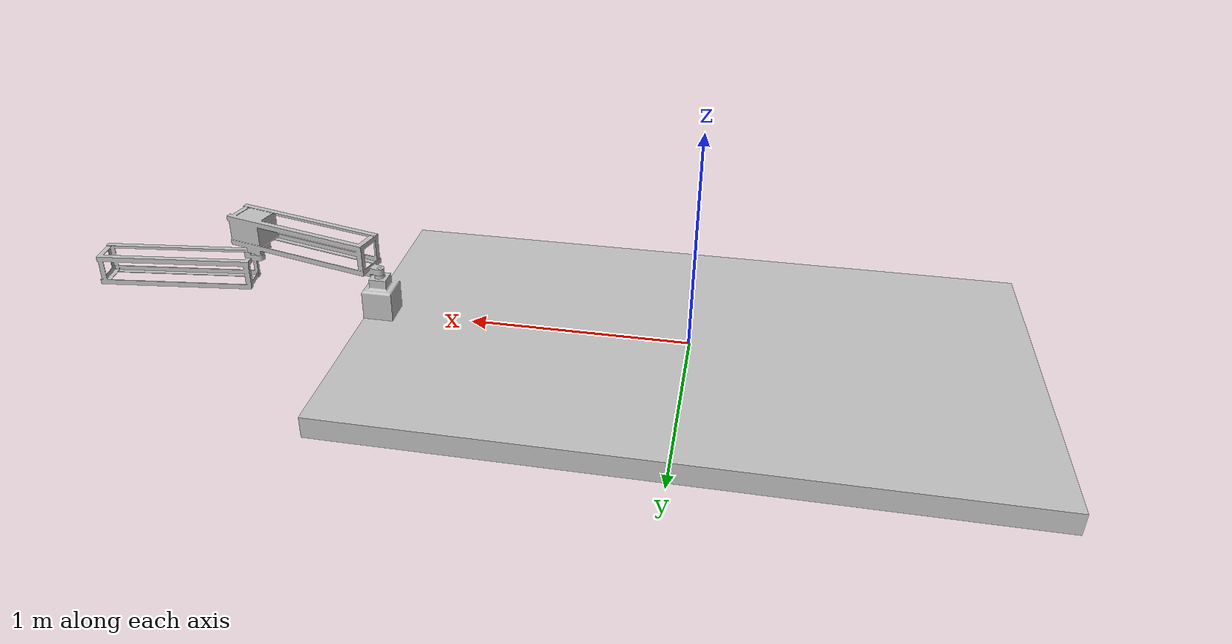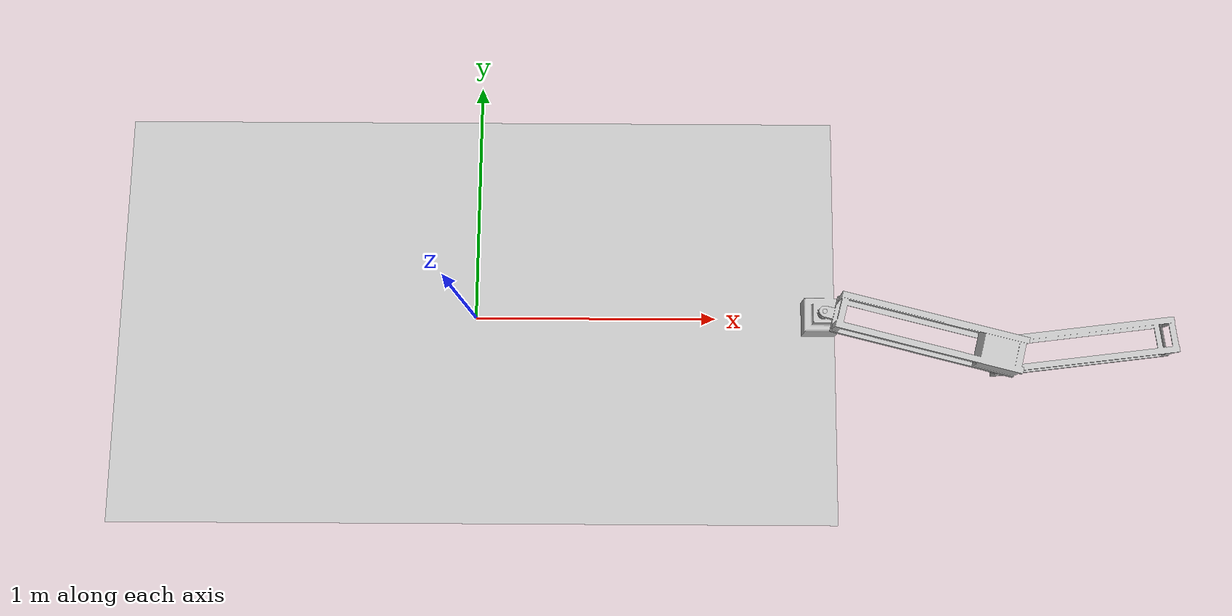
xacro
<?xml version="1.0"?>
<robot xmlns:xacro="http://www.ros.org/wiki/xacro" name="arm">
    <xacro:arg name="initial_positions_file" default="initial_positions.yaml" />

    <!-- Import arm urdf file -->
    <xacro:include filename="$(find arm)/urdf/arm.xacro" />

    <!-- Import control_xacro -->
    <xacro:include filename="arm.ros2_control.xacro" />

    <xacro:arm_ros2_control name="FakeSystem" initial_positions_file="$(arg initial_positions_file)"/>

</robot>

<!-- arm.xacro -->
<!-- XACRO version of the URDF generated by SolidWorks to URDF Exporter -->
<robot xmlns:xacro="http://ros.org/wiki/xacro" name="arm">

  <!-- Define properties for reuse -->
  <xacro:property name="color" value="0.75294 0.75294 0.75294 1"/>
  <xacro:property name="effort_limit" value="5"/>
  <xacro:property name="velocity_limit" value="1"/>
  <xacro:property name="joint_limit_lower" value="-1.5"/>
  <xacro:property name="joint_limit_upper" value="1.5"/>

  <!-- Base Link -->
  <link name="base_link">
    <inertial>
      <origin xyz="0.0048255 -1.4572E-16 -0.049574" rpy="0 0 0"/>
      <mass value="511.73"/>
      <inertia ixx="123.26" ixy="1.177E-14" ixz="-6.9518E-16"
               iyy="382.93" iyz="-8.3518E-16" izz="505.33"/>
    </inertial>
    <visual>
      <origin xyz="0 0 0" rpy="0 0 0"/>
      <geometry>
        <mesh filename="package://arm/meshes/base_link.STL"/>
      </geometry>
      <material name="base_color">
        <color rgba="${color}"/>
      </material>
    </visual>
    <collision>
      <origin xyz="0 0 0" rpy="0 0 0"/>
      <geometry>
        <mesh filename="package://arm/meshes/base_link.STL"/>
      </geometry>
    </collision>
  </link>

  <!-- Link1 -->
  <link name="link1">
    <inertial>
      <origin xyz="0.46735 -0.11695 0.053163" rpy="0 0 0"/>
      <mass value="6.3909"/>
      <inertia ixx="0.018479" ixy="0.036498" ixz="1.5041E-05"
               iyy="0.15519" iyz="-3.764E-06" izz="0.16167"/>
    </inertial>
    <visual>
      <origin xyz="0 0 0" rpy="0 0 0"/>
      <geometry>
        <mesh filename="package://arm/meshes/link1.STL"/>
      </geometry>
      <material name="link1_color">
        <color rgba="${color}"/>
      </material>
    </visual>
    <collision>
      <origin xyz="0 0 0" rpy="0 0 0"/>
      <geometry>
        <mesh filename="package://arm/meshes/link1.STL"/>
      </geometry>
    </collision>
  </link>

  <!-- Joint1 -->
  <joint name="joint1" type="revolute">
    <origin xyz="1.43 0 0.236" rpy="0 0 0"/>
    <parent link="base_link"/>
    <child link="link1"/>
    <axis xyz="0 0 1"/>
    <limit lower="${joint_limit_lower}" upper="${joint_limit_upper}"
           effort="${effort_limit}" velocity="${velocity_limit}"/>
  </joint>

  <!-- Link2 -->
  <link name="link2">
    <inertial>
      <origin xyz="-2.0486 -0.1649 0.16936" rpy="0 0 0"/>
      <mass value="522.78"/>
      <inertia ixx="124.33" ixy="-2.7911" ixz="5.6764"
               iyy="438.92" iyz="0.31315" izz="560.68"/>
    </inertial>
    <visual>
      <origin xyz="0 0 0" rpy="0 0 0"/>
      <geometry>
        <mesh filename="package://arm/meshes/link2.STL"/>
      </geometry>
      <material name="link2_color">
        <color rgba="${color}"/>
      </material>
    </visual>
    <collision>
      <origin xyz="0 0 0" rpy="0 0 0"/>
      <geometry>
        <mesh filename="package://arm/meshes/link2.STL"/>
      </geometry>
    </collision>
  </link>

  <!-- Joint2 -->
  <joint name="joint2" type="revolute">
    <origin xyz="0.66887 -0.16738 -0.111" rpy="3.1416 0 0"/>
    <parent link="link1"/>
    <child link="link2"/>
    <axis xyz="0 0 1"/>
    <limit lower="${joint_limit_lower}" upper="${joint_limit_upper}"
           effort="${effort_limit}" velocity="${velocity_limit}"/>
  </joint>

</robot>
